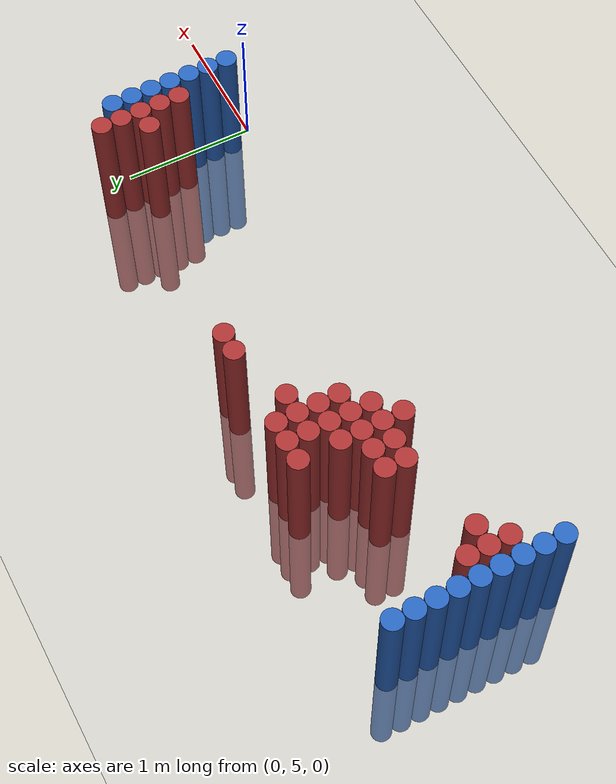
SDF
<sdf version="1.6">
 <world name="default">
  <model name="ground_plane">
   <static>1</static>
   <link name="link">
    <collision name="collision">
     <geometry><plane><normal>0 0 1</normal><size>100 100</size></plane></geometry>
     <surface><friction><ode><mu>100</mu><mu2>50</mu2></ode></friction></surface>
    </collision>
    <visual name="visual">
     <cast_shadows>0</cast_shadows>
     <geometry><plane><normal>0 0 1</normal><size>100 100</size></plane></geometry>
     <material>
      <script><uri>file://media/materials/scripts/gazebo.material</uri><name>Gazebo/Grey</name></script>
     </material>
    </visual>
   </link>
  </model>
  <model name="unit_cylinder_95">
   <static>1</static>
   <pose>-4.425000 5.025000 0.000000 0.000000 0.000000 0.000000</pose>
   <link name="link">
    <inertial>
     <mass>1</mass>
     <inertia><ixx>0.145833</ixx><ixy>0</ixy><ixz>0</ixz><iyy>0.145833</iyy><iyz>0</iyz><izz>0.125</izz></inertia>
    </inertial>
    <collision name="collision">
     <geometry><cylinder><radius>0.075000</radius><length>2</length></cylinder></geometry>
    </collision>
    <visual name="visual">
     <geometry><cylinder><radius>0.075000</radius><length>2</length></cylinder></geometry>
     <material>
      <ambient>0.152000 0.379000 0.720000 1</ambient>
      <diffuse>0.152000 0.379000 0.720000 1</diffuse>
     </material>
     <material>
      <script><name>Gazebo/Grey</name><uri>file://media/materials/scripts/gazebo.material</uri></script>
     </material>
    </visual>
   </link>
  </model>
  <model name="unit_cylinder_96">
   <static>1</static>
   <pose>-4.425000 5.175000 0.000000 0.000000 0.000000 0.000000</pose>
   <link name="link">
    <inertial>
     <mass>1</mass>
     <inertia><ixx>0.145833</ixx><ixy>0</ixy><ixz>0</ixz><iyy>0.145833</iyy><iyz>0</iyz><izz>0.125</izz></inertia>
    </inertial>
    <collision name="collision">
     <geometry><cylinder><radius>0.075000</radius><length>2</length></cylinder></geometry>
    </collision>
    <visual name="visual">
     <geometry><cylinder><radius>0.075000</radius><length>2</length></cylinder></geometry>
     <material>
      <ambient>0.152000 0.379000 0.720000 1</ambient>
      <diffuse>0.152000 0.379000 0.720000 1</diffuse>
     </material>
     <material>
      <script><name>Gazebo/Grey</name><uri>file://media/materials/scripts/gazebo.material</uri></script>
     </material>
    </visual>
   </link>
  </model>
  <model name="unit_cylinder_97">
   <static>1</static>
   <pose>-4.425000 5.325000 0.000000 0.000000 0.000000 0.000000</pose>
   <link name="link">
    <inertial>
     <mass>1</mass>
     <inertia><ixx>0.145833</ixx><ixy>0</ixy><ixz>0</ixz><iyy>0.145833</iyy><iyz>0</iyz><izz>0.125</izz></inertia>
    </inertial>
    <collision name="collision">
     <geometry><cylinder><radius>0.075000</radius><length>2</length></cylinder></geometry>
    </collision>
    <visual name="visual">
     <geometry><cylinder><radius>0.075000</radius><length>2</length></cylinder></geometry>
     <material>
      <ambient>0.152000 0.379000 0.720000 1</ambient>
      <diffuse>0.152000 0.379000 0.720000 1</diffuse>
     </material>
     <material>
      <script><name>Gazebo/Grey</name><uri>file://media/materials/scripts/gazebo.material</uri></script>
     </material>
    </visual>
   </link>
  </model>
  <model name="unit_cylinder_98">
   <static>1</static>
   <pose>-4.425000 5.475000 0.000000 0.000000 0.000000 0.000000</pose>
   <link name="link">
    <inertial>
     <mass>1</mass>
     <inertia><ixx>0.145833</ixx><ixy>0</ixy><ixz>0</ixz><iyy>0.145833</iyy><iyz>0</iyz><izz>0.125</izz></inertia>
    </inertial>
    <collision name="collision">
     <geometry><cylinder><radius>0.075000</radius><length>2</length></cylinder></geometry>
    </collision>
    <visual name="visual">
     <geometry><cylinder><radius>0.075000</radius><length>2</length></cylinder></geometry>
     <material>
      <ambient>0.152000 0.379000 0.720000 1</ambient>
      <diffuse>0.152000 0.379000 0.720000 1</diffuse>
     </material>
     <material>
      <script><name>Gazebo/Grey</name><uri>file://media/materials/scripts/gazebo.material</uri></script>
     </material>
    </visual>
   </link>
  </model>
  <model name="unit_cylinder_99">
   <static>1</static>
   <pose>-4.425000 5.625000 0.000000 0.000000 0.000000 0.000000</pose>
   <link name="link">
    <inertial>
     <mass>1</mass>
     <inertia><ixx>0.145833</ixx><ixy>0</ixy><ixz>0</ixz><iyy>0.145833</iyy><iyz>0</iyz><izz>0.125</izz></inertia>
    </inertial>
    <collision name="collision">
     <geometry><cylinder><radius>0.075000</radius><length>2</length></cylinder></geometry>
    </collision>
    <visual name="visual">
     <geometry><cylinder><radius>0.075000</radius><length>2</length></cylinder></geometry>
     <material>
      <ambient>0.152000 0.379000 0.720000 1</ambient>
      <diffuse>0.152000 0.379000 0.720000 1</diffuse>
     </material>
     <material>
      <script><name>Gazebo/Grey</name><uri>file://media/materials/scripts/gazebo.material</uri></script>
     </material>
    </visual>
   </link>
  </model>
  <model name="unit_cylinder_100">
   <static>1</static>
   <pose>-4.425000 5.775000 0.000000 0.000000 0.000000 0.000000</pose>
   <link name="link">
    <inertial>
     <mass>1</mass>
     <inertia><ixx>0.145833</ixx><ixy>0</ixy><ixz>0</ixz><iyy>0.145833</iyy><iyz>0</iyz><izz>0.125</izz></inertia>
    </inertial>
    <collision name="collision">
     <geometry><cylinder><radius>0.075000</radius><length>2</length></cylinder></geometry>
    </collision>
    <visual name="visual">
     <geometry><cylinder><radius>0.075000</radius><length>2</length></cylinder></geometry>
     <material>
      <ambient>0.152000 0.379000 0.720000 1</ambient>
      <diffuse>0.152000 0.379000 0.720000 1</diffuse>
     </material>
     <material>
      <script><name>Gazebo/Grey</name><uri>file://media/materials/scripts/gazebo.material</uri></script>
     </material>
    </visual>
   </link>
  </model>
  <model name="unit_cylinder_101">
   <static>1</static>
   <pose>-4.425000 5.925000 0.000000 0.000000 0.000000 0.000000</pose>
   <link name="link">
    <inertial>
     <mass>1</mass>
     <inertia><ixx>0.145833</ixx><ixy>0</ixy><ixz>0</ixz><iyy>0.145833</iyy><iyz>0</iyz><izz>0.125</izz></inertia>
    </inertial>
    <collision name="collision">
     <geometry><cylinder><radius>0.075000</radius><length>2</length></cylinder></geometry>
    </collision>
    <visual name="visual">
     <geometry><cylinder><radius>0.075000</radius><length>2</length></cylinder></geometry>
     <material>
      <ambient>0.152000 0.379000 0.720000 1</ambient>
      <diffuse>0.152000 0.379000 0.720000 1</diffuse>
     </material>
     <material>
      <script><name>Gazebo/Grey</name><uri>file://media/materials/scripts/gazebo.material</uri></script>
     </material>
    </visual>
   </link>
  </model>
  <model name="unit_cylinder_102">
   <static>1</static>
   <pose>-4.425000 6.075000 0.000000 0.000000 0.000000 0.000000</pose>
   <link name="link">
    <inertial>
     <mass>1</mass>
     <inertia><ixx>0.145833</ixx><ixy>0</ixy><ixz>0</ixz><iyy>0.145833</iyy><iyz>0</iyz><izz>0.125</izz></inertia>
    </inertial>
    <collision name="collision">
     <geometry><cylinder><radius>0.075000</radius><length>2</length></cylinder></geometry>
    </collision>
    <visual name="visual">
     <geometry><cylinder><radius>0.075000</radius><length>2</length></cylinder></geometry>
     <material>
      <ambient>0.152000 0.379000 0.720000 1</ambient>
      <diffuse>0.152000 0.379000 0.720000 1</diffuse>
     </material>
     <material>
      <script><name>Gazebo/Grey</name><uri>file://media/materials/scripts/gazebo.material</uri></script>
     </material>
    </visual>
   </link>
  </model>
  <model name="unit_cylinder_103">
   <static>1</static>
   <pose>-4.425000 6.225000 0.000000 0.000000 0.000000 0.000000</pose>
   <link name="link">
    <inertial>
     <mass>1</mass>
     <inertia><ixx>0.145833</ixx><ixy>0</ixy><ixz>0</ixz><iyy>0.145833</iyy><iyz>0</iyz><izz>0.125</izz></inertia>
    </inertial>
    <collision name="collision">
     <geometry><cylinder><radius>0.075000</radius><length>2</length></cylinder></geometry>
    </collision>
    <visual name="visual">
     <geometry><cylinder><radius>0.075000</radius><length>2</length></cylinder></geometry>
     <material>
      <ambient>0.152000 0.379000 0.720000 1</ambient>
      <diffuse>0.152000 0.379000 0.720000 1</diffuse>
     </material>
     <material>
      <script><name>Gazebo/Grey</name><uri>file://media/materials/scripts/gazebo.material</uri></script>
     </material>
    </visual>
   </link>
  </model>
  <model name="unit_cylinder_126">
   <static>1</static>
   <pose>-4.275000 5.325000 0.000000 0.000000 0.000000 0.000000</pose>
   <link name="link">
    <inertial>
     <mass>1</mass>
     <inertia><ixx>0.145833</ixx><ixy>0</ixy><ixz>0</ixz><iyy>0.145833</iyy><iyz>0</iyz><izz>0.125</izz></inertia>
    </inertial>
    <collision name="collision">
     <geometry><cylinder><radius>0.075000</radius><length>2</length></cylinder></geometry>
    </collision>
    <visual name="visual">
     <geometry><cylinder><radius>0.075000</radius><length>2</length></cylinder></geometry>
     <material>
      <ambient>0.648000 0.192000 0.192000 1</ambient>
      <diffuse>0.648000 0.192000 0.192000 1</diffuse>
     </material>
     <material>
      <script><name>Gazebo/Grey</name><uri>file://media/materials/scripts/gazebo.material</uri></script>
     </material>
    </visual>
   </link>
  </model>
  <model name="unit_cylinder_127">
   <static>1</static>
   <pose>-4.275000 5.475000 0.000000 0.000000 0.000000 0.000000</pose>
   <link name="link">
    <inertial>
     <mass>1</mass>
     <inertia><ixx>0.145833</ixx><ixy>0</ixy><ixz>0</ixz><iyy>0.145833</iyy><iyz>0</iyz><izz>0.125</izz></inertia>
    </inertial>
    <collision name="collision">
     <geometry><cylinder><radius>0.075000</radius><length>2</length></cylinder></geometry>
    </collision>
    <visual name="visual">
     <geometry><cylinder><radius>0.075000</radius><length>2</length></cylinder></geometry>
     <material>
      <ambient>0.648000 0.192000 0.192000 1</ambient>
      <diffuse>0.648000 0.192000 0.192000 1</diffuse>
     </material>
     <material>
      <script><name>Gazebo/Grey</name><uri>file://media/materials/scripts/gazebo.material</uri></script>
     </material>
    </visual>
   </link>
  </model>
  <model name="unit_cylinder_128">
   <static>1</static>
   <pose>-4.275000 5.625000 0.000000 0.000000 0.000000 0.000000</pose>
   <link name="link">
    <inertial>
     <mass>1</mass>
     <inertia><ixx>0.145833</ixx><ixy>0</ixy><ixz>0</ixz><iyy>0.145833</iyy><iyz>0</iyz><izz>0.125</izz></inertia>
    </inertial>
    <collision name="collision">
     <geometry><cylinder><radius>0.075000</radius><length>2</length></cylinder></geometry>
    </collision>
    <visual name="visual">
     <geometry><cylinder><radius>0.075000</radius><length>2</length></cylinder></geometry>
     <material>
      <ambient>0.648000 0.192000 0.192000 1</ambient>
      <diffuse>0.648000 0.192000 0.192000 1</diffuse>
     </material>
     <material>
      <script><name>Gazebo/Grey</name><uri>file://media/materials/scripts/gazebo.material</uri></script>
     </material>
    </visual>
   </link>
  </model>
  <model name="unit_cylinder_130">
   <static>1</static>
   <pose>-4.125000 5.475000 0.000000 0.000000 0.000000 0.000000</pose>
   <link name="link">
    <inertial>
     <mass>1</mass>
     <inertia><ixx>0.145833</ixx><ixy>0</ixy><ixz>0</ixz><iyy>0.145833</iyy><iyz>0</iyz><izz>0.125</izz></inertia>
    </inertial>
    <collision name="collision">
     <geometry><cylinder><radius>0.075000</radius><length>2</length></cylinder></geometry>
    </collision>
    <visual name="visual">
     <geometry><cylinder><radius>0.075000</radius><length>2</length></cylinder></geometry>
     <material>
      <ambient>0.648000 0.192000 0.192000 1</ambient>
      <diffuse>0.648000 0.192000 0.192000 1</diffuse>
     </material>
     <material>
      <script><name>Gazebo/Grey</name><uri>file://media/materials/scripts/gazebo.material</uri></script>
     </material>
    </visual>
   </link>
  </model>
  <model name="unit_cylinder_139">
   <static>1</static>
   <pose>-3.525000 5.625000 0.000000 0.000000 0.000000 0.000000</pose>
   <link name="link">
    <inertial>
     <mass>1</mass>
     <inertia><ixx>0.145833</ixx><ixy>0</ixy><ixz>0</ixz><iyy>0.145833</iyy><iyz>0</iyz><izz>0.125</izz></inertia>
    </inertial>
    <collision name="collision">
     <geometry><cylinder><radius>0.075000</radius><length>2</length></cylinder></geometry>
    </collision>
    <visual name="visual">
     <geometry><cylinder><radius>0.075000</radius><length>2</length></cylinder></geometry>
     <material>
      <ambient>0.648000 0.192000 0.192000 1</ambient>
      <diffuse>0.648000 0.192000 0.192000 1</diffuse>
     </material>
     <material>
      <script><name>Gazebo/Grey</name><uri>file://media/materials/scripts/gazebo.material</uri></script>
     </material>
    </visual>
   </link>
  </model>
  <model name="unit_cylinder_140">
   <static>1</static>
   <pose>-3.525000 5.775000 0.000000 0.000000 0.000000 0.000000</pose>
   <link name="link">
    <inertial>
     <mass>1</mass>
     <inertia><ixx>0.145833</ixx><ixy>0</ixy><ixz>0</ixz><iyy>0.145833</iyy><iyz>0</iyz><izz>0.125</izz></inertia>
    </inertial>
    <collision name="collision">
     <geometry><cylinder><radius>0.075000</radius><length>2</length></cylinder></geometry>
    </collision>
    <visual name="visual">
     <geometry><cylinder><radius>0.075000</radius><length>2</length></cylinder></geometry>
     <material>
      <ambient>0.648000 0.192000 0.192000 1</ambient>
      <diffuse>0.648000 0.192000 0.192000 1</diffuse>
     </material>
     <material>
      <script><name>Gazebo/Grey</name><uri>file://media/materials/scripts/gazebo.material</uri></script>
     </material>
    </visual>
   </link>
  </model>
  <model name="unit_cylinder_143">
   <static>1</static>
   <pose>-3.375000 5.625000 0.000000 0.000000 0.000000 0.000000</pose>
   <link name="link">
    <inertial>
     <mass>1</mass>
     <inertia><ixx>0.145833</ixx><ixy>0</ixy><ixz>0</ixz><iyy>0.145833</iyy><iyz>0</iyz><izz>0.125</izz></inertia>
    </inertial>
    <collision name="collision">
     <geometry><cylinder><radius>0.075000</radius><length>2</length></cylinder></geometry>
    </collision>
    <visual name="visual">
     <geometry><cylinder><radius>0.075000</radius><length>2</length></cylinder></geometry>
     <material>
      <ambient>0.648000 0.192000 0.192000 1</ambient>
      <diffuse>0.648000 0.192000 0.192000 1</diffuse>
     </material>
     <material>
      <script><name>Gazebo/Grey</name><uri>file://media/materials/scripts/gazebo.material</uri></script>
     </material>
    </visual>
   </link>
  </model>
  <model name="unit_cylinder_144">
   <static>1</static>
   <pose>-3.375000 5.775000 0.000000 0.000000 0.000000 0.000000</pose>
   <link name="link">
    <inertial>
     <mass>1</mass>
     <inertia><ixx>0.145833</ixx><ixy>0</ixy><ixz>0</ixz><iyy>0.145833</iyy><iyz>0</iyz><izz>0.125</izz></inertia>
    </inertial>
    <collision name="collision">
     <geometry><cylinder><radius>0.075000</radius><length>2</length></cylinder></geometry>
    </collision>
    <visual name="visual">
     <geometry><cylinder><radius>0.075000</radius><length>2</length></cylinder></geometry>
     <material>
      <ambient>0.648000 0.192000 0.192000 1</ambient>
      <diffuse>0.648000 0.192000 0.192000 1</diffuse>
     </material>
     <material>
      <script><name>Gazebo/Grey</name><uri>file://media/materials/scripts/gazebo.material</uri></script>
     </material>
    </visual>
   </link>
  </model>
  <model name="unit_cylinder_145">
   <static>1</static>
   <pose>-3.225000 5.475000 0.000000 0.000000 0.000000 0.000000</pose>
   <link name="link">
    <inertial>
     <mass>1</mass>
     <inertia><ixx>0.145833</ixx><ixy>0</ixy><ixz>0</ixz><iyy>0.145833</iyy><iyz>0</iyz><izz>0.125</izz></inertia>
    </inertial>
    <collision name="collision">
     <geometry><cylinder><radius>0.075000</radius><length>2</length></cylinder></geometry>
    </collision>
    <visual name="visual">
     <geometry><cylinder><radius>0.075000</radius><length>2</length></cylinder></geometry>
     <material>
      <ambient>0.648000 0.192000 0.192000 1</ambient>
      <diffuse>0.648000 0.192000 0.192000 1</diffuse>
     </material>
     <material>
      <script><name>Gazebo/Grey</name><uri>file://media/materials/scripts/gazebo.material</uri></script>
     </material>
    </visual>
   </link>
  </model>
  <model name="unit_cylinder_146">
   <static>1</static>
   <pose>-3.225000 5.625000 0.000000 0.000000 0.000000 0.000000</pose>
   <link name="link">
    <inertial>
     <mass>1</mass>
     <inertia><ixx>0.145833</ixx><ixy>0</ixy><ixz>0</ixz><iyy>0.145833</iyy><iyz>0</iyz><izz>0.125</izz></inertia>
    </inertial>
    <collision name="collision">
     <geometry><cylinder><radius>0.075000</radius><length>2</length></cylinder></geometry>
    </collision>
    <visual name="visual">
     <geometry><cylinder><radius>0.075000</radius><length>2</length></cylinder></geometry>
     <material>
      <ambient>0.648000 0.192000 0.192000 1</ambient>
      <diffuse>0.648000 0.192000 0.192000 1</diffuse>
     </material>
     <material>
      <script><name>Gazebo/Grey</name><uri>file://media/materials/scripts/gazebo.material</uri></script>
     </material>
    </visual>
   </link>
  </model>
  <model name="unit_cylinder_147">
   <static>1</static>
   <pose>-3.225000 5.775000 0.000000 0.000000 0.000000 0.000000</pose>
   <link name="link">
    <inertial>
     <mass>1</mass>
     <inertia><ixx>0.145833</ixx><ixy>0</ixy><ixz>0</ixz><iyy>0.145833</iyy><iyz>0</iyz><izz>0.125</izz></inertia>
    </inertial>
    <collision name="collision">
     <geometry><cylinder><radius>0.075000</radius><length>2</length></cylinder></geometry>
    </collision>
    <visual name="visual">
     <geometry><cylinder><radius>0.075000</radius><length>2</length></cylinder></geometry>
     <material>
      <ambient>0.648000 0.192000 0.192000 1</ambient>
      <diffuse>0.648000 0.192000 0.192000 1</diffuse>
     </material>
     <material>
      <script><name>Gazebo/Grey</name><uri>file://media/materials/scripts/gazebo.material</uri></script>
     </material>
    </visual>
   </link>
  </model>
  <model name="unit_cylinder_148">
   <static>1</static>
   <pose>-3.225000 5.925000 0.000000 0.000000 0.000000 0.000000</pose>
   <link name="link">
    <inertial>
     <mass>1</mass>
     <inertia><ixx>0.145833</ixx><ixy>0</ixy><ixz>0</ixz><iyy>0.145833</iyy><iyz>0</iyz><izz>0.125</izz></inertia>
    </inertial>
    <collision name="collision">
     <geometry><cylinder><radius>0.075000</radius><length>2</length></cylinder></geometry>
    </collision>
    <visual name="visual">
     <geometry><cylinder><radius>0.075000</radius><length>2</length></cylinder></geometry>
     <material>
      <ambient>0.648000 0.192000 0.192000 1</ambient>
      <diffuse>0.648000 0.192000 0.192000 1</diffuse>
     </material>
     <material>
      <script><name>Gazebo/Grey</name><uri>file://media/materials/scripts/gazebo.material</uri></script>
     </material>
    </visual>
   </link>
  </model>
  <model name="unit_cylinder_149">
   <static>1</static>
   <pose>-3.225000 6.225000 0.000000 0.000000 0.000000 0.000000</pose>
   <link name="link">
    <inertial>
     <mass>1</mass>
     <inertia><ixx>0.145833</ixx><ixy>0</ixy><ixz>0</ixz><iyy>0.145833</iyy><iyz>0</iyz><izz>0.125</izz></inertia>
    </inertial>
    <collision name="collision">
     <geometry><cylinder><radius>0.075000</radius><length>2</length></cylinder></geometry>
    </collision>
    <visual name="visual">
     <geometry><cylinder><radius>0.075000</radius><length>2</length></cylinder></geometry>
     <material>
      <ambient>0.648000 0.192000 0.192000 1</ambient>
      <diffuse>0.648000 0.192000 0.192000 1</diffuse>
     </material>
     <material>
      <script><name>Gazebo/Grey</name><uri>file://media/materials/scripts/gazebo.material</uri></script>
     </material>
    </visual>
   </link>
  </model>
  <model name="unit_cylinder_150">
   <static>1</static>
   <pose>-3.075000 5.625000 0.000000 0.000000 0.000000 0.000000</pose>
   <link name="link">
    <inertial>
     <mass>1</mass>
     <inertia><ixx>0.145833</ixx><ixy>0</ixy><ixz>0</ixz><iyy>0.145833</iyy><iyz>0</iyz><izz>0.125</izz></inertia>
    </inertial>
    <collision name="collision">
     <geometry><cylinder><radius>0.075000</radius><length>2</length></cylinder></geometry>
    </collision>
    <visual name="visual">
     <geometry><cylinder><radius>0.075000</radius><length>2</length></cylinder></geometry>
     <material>
      <ambient>0.648000 0.192000 0.192000 1</ambient>
      <diffuse>0.648000 0.192000 0.192000 1</diffuse>
     </material>
     <material>
      <script><name>Gazebo/Grey</name><uri>file://media/materials/scripts/gazebo.material</uri></script>
     </material>
    </visual>
   </link>
  </model>
  <model name="unit_cylinder_151">
   <static>1</static>
   <pose>-3.075000 5.775000 0.000000 0.000000 0.000000 0.000000</pose>
   <link name="link">
    <inertial>
     <mass>1</mass>
     <inertia><ixx>0.145833</ixx><ixy>0</ixy><ixz>0</ixz><iyy>0.145833</iyy><iyz>0</iyz><izz>0.125</izz></inertia>
    </inertial>
    <collision name="collision">
     <geometry><cylinder><radius>0.075000</radius><length>2</length></cylinder></geometry>
    </collision>
    <visual name="visual">
     <geometry><cylinder><radius>0.075000</radius><length>2</length></cylinder></geometry>
     <material>
      <ambient>0.648000 0.192000 0.192000 1</ambient>
      <diffuse>0.648000 0.192000 0.192000 1</diffuse>
     </material>
     <material>
      <script><name>Gazebo/Grey</name><uri>file://media/materials/scripts/gazebo.material</uri></script>
     </material>
    </visual>
   </link>
  </model>
  <model name="unit_cylinder_152">
   <static>1</static>
   <pose>-3.075000 5.925000 0.000000 0.000000 0.000000 0.000000</pose>
   <link name="link">
    <inertial>
     <mass>1</mass>
     <inertia><ixx>0.145833</ixx><ixy>0</ixy><ixz>0</ixz><iyy>0.145833</iyy><iyz>0</iyz><izz>0.125</izz></inertia>
    </inertial>
    <collision name="collision">
     <geometry><cylinder><radius>0.075000</radius><length>2</length></cylinder></geometry>
    </collision>
    <visual name="visual">
     <geometry><cylinder><radius>0.075000</radius><length>2</length></cylinder></geometry>
     <material>
      <ambient>0.648000 0.192000 0.192000 1</ambient>
      <diffuse>0.648000 0.192000 0.192000 1</diffuse>
     </material>
     <material>
      <script><name>Gazebo/Grey</name><uri>file://media/materials/scripts/gazebo.material</uri></script>
     </material>
    </visual>
   </link>
  </model>
  <model name="unit_cylinder_153">
   <static>1</static>
   <pose>-3.075000 6.075000 0.000000 0.000000 0.000000 0.000000</pose>
   <link name="link">
    <inertial>
     <mass>1</mass>
     <inertia><ixx>0.145833</ixx><ixy>0</ixy><ixz>0</ixz><iyy>0.145833</iyy><iyz>0</iyz><izz>0.125</izz></inertia>
    </inertial>
    <collision name="collision">
     <geometry><cylinder><radius>0.075000</radius><length>2</length></cylinder></geometry>
    </collision>
    <visual name="visual">
     <geometry><cylinder><radius>0.075000</radius><length>2</length></cylinder></geometry>
     <material>
      <ambient>0.648000 0.192000 0.192000 1</ambient>
      <diffuse>0.648000 0.192000 0.192000 1</diffuse>
     </material>
     <material>
      <script><name>Gazebo/Grey</name><uri>file://media/materials/scripts/gazebo.material</uri></script>
     </material>
    </visual>
   </link>
  </model>
  <model name="unit_cylinder_154">
   <static>1</static>
   <pose>-3.075000 6.225000 0.000000 0.000000 0.000000 0.000000</pose>
   <link name="link">
    <inertial>
     <mass>1</mass>
     <inertia><ixx>0.145833</ixx><ixy>0</ixy><ixz>0</ixz><iyy>0.145833</iyy><iyz>0</iyz><izz>0.125</izz></inertia>
    </inertial>
    <collision name="collision">
     <geometry><cylinder><radius>0.075000</radius><length>2</length></cylinder></geometry>
    </collision>
    <visual name="visual">
     <geometry><cylinder><radius>0.075000</radius><length>2</length></cylinder></geometry>
     <material>
      <ambient>0.648000 0.192000 0.192000 1</ambient>
      <diffuse>0.648000 0.192000 0.192000 1</diffuse>
     </material>
     <material>
      <script><name>Gazebo/Grey</name><uri>file://media/materials/scripts/gazebo.material</uri></script>
     </material>
    </visual>
   </link>
  </model>
  <model name="unit_cylinder_156">
   <static>1</static>
   <pose>-2.925000 5.775000 0.000000 0.000000 0.000000 0.000000</pose>
   <link name="link">
    <inertial>
     <mass>1</mass>
     <inertia><ixx>0.145833</ixx><ixy>0</ixy><ixz>0</ixz><iyy>0.145833</iyy><iyz>0</iyz><izz>0.125</izz></inertia>
    </inertial>
    <collision name="collision">
     <geometry><cylinder><radius>0.075000</radius><length>2</length></cylinder></geometry>
    </collision>
    <visual name="visual">
     <geometry><cylinder><radius>0.075000</radius><length>2</length></cylinder></geometry>
     <material>
      <ambient>0.648000 0.192000 0.192000 1</ambient>
      <diffuse>0.648000 0.192000 0.192000 1</diffuse>
     </material>
     <material>
      <script><name>Gazebo/Grey</name><uri>file://media/materials/scripts/gazebo.material</uri></script>
     </material>
    </visual>
   </link>
  </model>
  <model name="unit_cylinder_157">
   <static>1</static>
   <pose>-2.925000 5.925000 0.000000 0.000000 0.000000 0.000000</pose>
   <link name="link">
    <inertial>
     <mass>1</mass>
     <inertia><ixx>0.145833</ixx><ixy>0</ixy><ixz>0</ixz><iyy>0.145833</iyy><iyz>0</iyz><izz>0.125</izz></inertia>
    </inertial>
    <collision name="collision">
     <geometry><cylinder><radius>0.075000</radius><length>2</length></cylinder></geometry>
    </collision>
    <visual name="visual">
     <geometry><cylinder><radius>0.075000</radius><length>2</length></cylinder></geometry>
     <material>
      <ambient>0.648000 0.192000 0.192000 1</ambient>
      <diffuse>0.648000 0.192000 0.192000 1</diffuse>
     </material>
     <material>
      <script><name>Gazebo/Grey</name><uri>file://media/materials/scripts/gazebo.material</uri></script>
     </material>
    </visual>
   </link>
  </model>
  <model name="unit_cylinder_158">
   <static>1</static>
   <pose>-2.925000 6.075000 0.000000 0.000000 0.000000 0.000000</pose>
   <link name="link">
    <inertial>
     <mass>1</mass>
     <inertia><ixx>0.145833</ixx><ixy>0</ixy><ixz>0</ixz><iyy>0.145833</iyy><iyz>0</iyz><izz>0.125</izz></inertia>
    </inertial>
    <collision name="collision">
     <geometry><cylinder><radius>0.075000</radius><length>2</length></cylinder></geometry>
    </collision>
    <visual name="visual">
     <geometry><cylinder><radius>0.075000</radius><length>2</length></cylinder></geometry>
     <material>
      <ambient>0.648000 0.192000 0.192000 1</ambient>
      <diffuse>0.648000 0.192000 0.192000 1</diffuse>
     </material>
     <material>
      <script><name>Gazebo/Grey</name><uri>file://media/materials/scripts/gazebo.material</uri></script>
     </material>
    </visual>
   </link>
  </model>
  <model name="unit_cylinder_159">
   <static>1</static>
   <pose>-2.925000 6.225000 0.000000 0.000000 0.000000 0.000000</pose>
   <link name="link">
    <inertial>
     <mass>1</mass>
     <inertia><ixx>0.145833</ixx><ixy>0</ixy><ixz>0</ixz><iyy>0.145833</iyy><iyz>0</iyz><izz>0.125</izz></inertia>
    </inertial>
    <collision name="collision">
     <geometry><cylinder><radius>0.075000</radius><length>2</length></cylinder></geometry>
    </collision>
    <visual name="visual">
     <geometry><cylinder><radius>0.075000</radius><length>2</length></cylinder></geometry>
     <material>
      <ambient>0.648000 0.192000 0.192000 1</ambient>
      <diffuse>0.648000 0.192000 0.192000 1</diffuse>
     </material>
     <material>
      <script><name>Gazebo/Grey</name><uri>file://media/materials/scripts/gazebo.material</uri></script>
     </material>
    </visual>
   </link>
  </model>
  <model name="unit_cylinder_160">
   <static>1</static>
   <pose>-2.775000 6.075000 0.000000 0.000000 0.000000 0.000000</pose>
   <link name="link">
    <inertial>
     <mass>1</mass>
     <inertia><ixx>0.145833</ixx><ixy>0</ixy><ixz>0</ixz><iyy>0.145833</iyy><iyz>0</iyz><izz>0.125</izz></inertia>
    </inertial>
    <collision name="collision">
     <geometry><cylinder><radius>0.075000</radius><length>2</length></cylinder></geometry>
    </collision>
    <visual name="visual">
     <geometry><cylinder><radius>0.075000</radius><length>2</length></cylinder></geometry>
     <material>
      <ambient>0.648000 0.192000 0.192000 1</ambient>
      <diffuse>0.648000 0.192000 0.192000 1</diffuse>
     </material>
     <material>
      <script><name>Gazebo/Grey</name><uri>file://media/materials/scripts/gazebo.material</uri></script>
     </material>
    </visual>
   </link>
  </model>
  <model name="unit_cylinder_167">
   <static>1</static>
   <pose>-2.325000 6.225000 0.000000 0.000000 0.000000 0.000000</pose>
   <link name="link">
    <inertial>
     <mass>1</mass>
     <inertia><ixx>0.145833</ixx><ixy>0</ixy><ixz>0</ixz><iyy>0.145833</iyy><iyz>0</iyz><izz>0.125</izz></inertia>
    </inertial>
    <collision name="collision">
     <geometry><cylinder><radius>0.075000</radius><length>2</length></cylinder></geometry>
    </collision>
    <visual name="visual">
     <geometry><cylinder><radius>0.075000</radius><length>2</length></cylinder></geometry>
     <material>
      <ambient>0.648000 0.192000 0.192000 1</ambient>
      <diffuse>0.648000 0.192000 0.192000 1</diffuse>
     </material>
     <material>
      <script><name>Gazebo/Grey</name><uri>file://media/materials/scripts/gazebo.material</uri></script>
     </material>
    </visual>
   </link>
  </model>
  <model name="unit_cylinder_170">
   <static>1</static>
   <pose>-2.175000 6.225000 0.000000 0.000000 0.000000 0.000000</pose>
   <link name="link">
    <inertial>
     <mass>1</mass>
     <inertia><ixx>0.145833</ixx><ixy>0</ixy><ixz>0</ixz><iyy>0.145833</iyy><iyz>0</iyz><izz>0.125</izz></inertia>
    </inertial>
    <collision name="collision">
     <geometry><cylinder><radius>0.075000</radius><length>2</length></cylinder></geometry>
    </collision>
    <visual name="visual">
     <geometry><cylinder><radius>0.075000</radius><length>2</length></cylinder></geometry>
     <material>
      <ambient>0.648000 0.192000 0.192000 1</ambient>
      <diffuse>0.648000 0.192000 0.192000 1</diffuse>
     </material>
     <material>
      <script><name>Gazebo/Grey</name><uri>file://media/materials/scripts/gazebo.material</uri></script>
     </material>
    </visual>
   </link>
  </model>
  <model name="unit_cylinder_185">
   <static>1</static>
   <pose>-0.375000 5.925000 0.000000 0.000000 0.000000 0.000000</pose>
   <link name="link">
    <inertial>
     <mass>1</mass>
     <inertia><ixx>0.145833</ixx><ixy>0</ixy><ixz>0</ixz><iyy>0.145833</iyy><iyz>0</iyz><izz>0.125</izz></inertia>
    </inertial>
    <collision name="collision">
     <geometry><cylinder><radius>0.075000</radius><length>2</length></cylinder></geometry>
    </collision>
    <visual name="visual">
     <geometry><cylinder><radius>0.075000</radius><length>2</length></cylinder></geometry>
     <material>
      <ambient>0.648000 0.192000 0.192000 1</ambient>
      <diffuse>0.648000 0.192000 0.192000 1</diffuse>
     </material>
     <material>
      <script><name>Gazebo/Grey</name><uri>file://media/materials/scripts/gazebo.material</uri></script>
     </material>
    </visual>
   </link>
  </model>
  <model name="unit_cylinder_190">
   <static>1</static>
   <pose>-0.225000 5.625000 0.000000 0.000000 0.000000 0.000000</pose>
   <link name="link">
    <inertial>
     <mass>1</mass>
     <inertia><ixx>0.145833</ixx><ixy>0</ixy><ixz>0</ixz><iyy>0.145833</iyy><iyz>0</iyz><izz>0.125</izz></inertia>
    </inertial>
    <collision name="collision">
     <geometry><cylinder><radius>0.075000</radius><length>2</length></cylinder></geometry>
    </collision>
    <visual name="visual">
     <geometry><cylinder><radius>0.075000</radius><length>2</length></cylinder></geometry>
     <material>
      <ambient>0.648000 0.192000 0.192000 1</ambient>
      <diffuse>0.648000 0.192000 0.192000 1</diffuse>
     </material>
     <material>
      <script><name>Gazebo/Grey</name><uri>file://media/materials/scripts/gazebo.material</uri></script>
     </material>
    </visual>
   </link>
  </model>
  <model name="unit_cylinder_191">
   <static>1</static>
   <pose>-0.225000 5.775000 0.000000 0.000000 0.000000 0.000000</pose>
   <link name="link">
    <inertial>
     <mass>1</mass>
     <inertia><ixx>0.145833</ixx><ixy>0</ixy><ixz>0</ixz><iyy>0.145833</iyy><iyz>0</iyz><izz>0.125</izz></inertia>
    </inertial>
    <collision name="collision">
     <geometry><cylinder><radius>0.075000</radius><length>2</length></cylinder></geometry>
    </collision>
    <visual name="visual">
     <geometry><cylinder><radius>0.075000</radius><length>2</length></cylinder></geometry>
     <material>
      <ambient>0.648000 0.192000 0.192000 1</ambient>
      <diffuse>0.648000 0.192000 0.192000 1</diffuse>
     </material>
     <material>
      <script><name>Gazebo/Grey</name><uri>file://media/materials/scripts/gazebo.material</uri></script>
     </material>
    </visual>
   </link>
  </model>
  <model name="unit_cylinder_192">
   <static>1</static>
   <pose>-0.225000 5.925000 0.000000 0.000000 0.000000 0.000000</pose>
   <link name="link">
    <inertial>
     <mass>1</mass>
     <inertia><ixx>0.145833</ixx><ixy>0</ixy><ixz>0</ixz><iyy>0.145833</iyy><iyz>0</iyz><izz>0.125</izz></inertia>
    </inertial>
    <collision name="collision">
     <geometry><cylinder><radius>0.075000</radius><length>2</length></cylinder></geometry>
    </collision>
    <visual name="visual">
     <geometry><cylinder><radius>0.075000</radius><length>2</length></cylinder></geometry>
     <material>
      <ambient>0.648000 0.192000 0.192000 1</ambient>
      <diffuse>0.648000 0.192000 0.192000 1</diffuse>
     </material>
     <material>
      <script><name>Gazebo/Grey</name><uri>file://media/materials/scripts/gazebo.material</uri></script>
     </material>
    </visual>
   </link>
  </model>
  <model name="unit_cylinder_193">
   <static>1</static>
   <pose>-0.225000 6.075000 0.000000 0.000000 0.000000 0.000000</pose>
   <link name="link">
    <inertial>
     <mass>1</mass>
     <inertia><ixx>0.145833</ixx><ixy>0</ixy><ixz>0</ixz><iyy>0.145833</iyy><iyz>0</iyz><izz>0.125</izz></inertia>
    </inertial>
    <collision name="collision">
     <geometry><cylinder><radius>0.075000</radius><length>2</length></cylinder></geometry>
    </collision>
    <visual name="visual">
     <geometry><cylinder><radius>0.075000</radius><length>2</length></cylinder></geometry>
     <material>
      <ambient>0.648000 0.192000 0.192000 1</ambient>
      <diffuse>0.648000 0.192000 0.192000 1</diffuse>
     </material>
     <material>
      <script><name>Gazebo/Grey</name><uri>file://media/materials/scripts/gazebo.material</uri></script>
     </material>
    </visual>
   </link>
  </model>
  <model name="unit_cylinder_194">
   <static>1</static>
   <pose>-0.225000 6.225000 0.000000 0.000000 0.000000 0.000000</pose>
   <link name="link">
    <inertial>
     <mass>1</mass>
     <inertia><ixx>0.145833</ixx><ixy>0</ixy><ixz>0</ixz><iyy>0.145833</iyy><iyz>0</iyz><izz>0.125</izz></inertia>
    </inertial>
    <collision name="collision">
     <geometry><cylinder><radius>0.075000</radius><length>2</length></cylinder></geometry>
    </collision>
    <visual name="visual">
     <geometry><cylinder><radius>0.075000</radius><length>2</length></cylinder></geometry>
     <material>
      <ambient>0.648000 0.192000 0.192000 1</ambient>
      <diffuse>0.648000 0.192000 0.192000 1</diffuse>
     </material>
     <material>
      <script><name>Gazebo/Grey</name><uri>file://media/materials/scripts/gazebo.material</uri></script>
     </material>
    </visual>
   </link>
  </model>
  <model name="unit_cylinder_207">
   <static>1</static>
   <pose>-0.075000 5.175000 0.000000 0.000000 0.000000 0.000000</pose>
   <link name="link">
    <inertial>
     <mass>1</mass>
     <inertia><ixx>0.145833</ixx><ixy>0</ixy><ixz>0</ixz><iyy>0.145833</iyy><iyz>0</iyz><izz>0.125</izz></inertia>
    </inertial>
    <collision name="collision">
     <geometry><cylinder><radius>0.075000</radius><length>2</length></cylinder></geometry>
    </collision>
    <visual name="visual">
     <geometry><cylinder><radius>0.075000</radius><length>2</length></cylinder></geometry>
     <material>
      <ambient>0.152000 0.379000 0.720000 1</ambient>
      <diffuse>0.152000 0.379000 0.720000 1</diffuse>
     </material>
     <material>
      <script><name>Gazebo/Grey</name><uri>file://media/materials/scripts/gazebo.material</uri></script>
     </material>
    </visual>
   </link>
  </model>
  <model name="unit_cylinder_208">
   <static>1</static>
   <pose>-0.075000 5.325000 0.000000 0.000000 0.000000 0.000000</pose>
   <link name="link">
    <inertial>
     <mass>1</mass>
     <inertia><ixx>0.145833</ixx><ixy>0</ixy><ixz>0</ixz><iyy>0.145833</iyy><iyz>0</iyz><izz>0.125</izz></inertia>
    </inertial>
    <collision name="collision">
     <geometry><cylinder><radius>0.075000</radius><length>2</length></cylinder></geometry>
    </collision>
    <visual name="visual">
     <geometry><cylinder><radius>0.075000</radius><length>2</length></cylinder></geometry>
     <material>
      <ambient>0.152000 0.379000 0.720000 1</ambient>
      <diffuse>0.152000 0.379000 0.720000 1</diffuse>
     </material>
     <material>
      <script><name>Gazebo/Grey</name><uri>file://media/materials/scripts/gazebo.material</uri></script>
     </material>
    </visual>
   </link>
  </model>
  <model name="unit_cylinder_209">
   <static>1</static>
   <pose>-0.075000 5.475000 0.000000 0.000000 0.000000 0.000000</pose>
   <link name="link">
    <inertial>
     <mass>1</mass>
     <inertia><ixx>0.145833</ixx><ixy>0</ixy><ixz>0</ixz><iyy>0.145833</iyy><iyz>0</iyz><izz>0.125</izz></inertia>
    </inertial>
    <collision name="collision">
     <geometry><cylinder><radius>0.075000</radius><length>2</length></cylinder></geometry>
    </collision>
    <visual name="visual">
     <geometry><cylinder><radius>0.075000</radius><length>2</length></cylinder></geometry>
     <material>
      <ambient>0.152000 0.379000 0.720000 1</ambient>
      <diffuse>0.152000 0.379000 0.720000 1</diffuse>
     </material>
     <material>
      <script><name>Gazebo/Grey</name><uri>file://media/materials/scripts/gazebo.material</uri></script>
     </material>
    </visual>
   </link>
  </model>
  <model name="unit_cylinder_210">
   <static>1</static>
   <pose>-0.075000 5.625000 0.000000 0.000000 0.000000 0.000000</pose>
   <link name="link">
    <inertial>
     <mass>1</mass>
     <inertia><ixx>0.145833</ixx><ixy>0</ixy><ixz>0</ixz><iyy>0.145833</iyy><iyz>0</iyz><izz>0.125</izz></inertia>
    </inertial>
    <collision name="collision">
     <geometry><cylinder><radius>0.075000</radius><length>2</length></cylinder></geometry>
    </collision>
    <visual name="visual">
     <geometry><cylinder><radius>0.075000</radius><length>2</length></cylinder></geometry>
     <material>
      <ambient>0.152000 0.379000 0.720000 1</ambient>
      <diffuse>0.152000 0.379000 0.720000 1</diffuse>
     </material>
     <material>
      <script><name>Gazebo/Grey</name><uri>file://media/materials/scripts/gazebo.material</uri></script>
     </material>
    </visual>
   </link>
  </model>
  <model name="unit_cylinder_211">
   <static>1</static>
   <pose>-0.075000 5.775000 0.000000 0.000000 0.000000 0.000000</pose>
   <link name="link">
    <inertial>
     <mass>1</mass>
     <inertia><ixx>0.145833</ixx><ixy>0</ixy><ixz>0</ixz><iyy>0.145833</iyy><iyz>0</iyz><izz>0.125</izz></inertia>
    </inertial>
    <collision name="collision">
     <geometry><cylinder><radius>0.075000</radius><length>2</length></cylinder></geometry>
    </collision>
    <visual name="visual">
     <geometry><cylinder><radius>0.075000</radius><length>2</length></cylinder></geometry>
     <material>
      <ambient>0.152000 0.379000 0.720000 1</ambient>
      <diffuse>0.152000 0.379000 0.720000 1</diffuse>
     </material>
     <material>
      <script><name>Gazebo/Grey</name><uri>file://media/materials/scripts/gazebo.material</uri></script>
     </material>
    </visual>
   </link>
  </model>
  <model name="unit_cylinder_212">
   <static>1</static>
   <pose>-0.075000 5.925000 0.000000 0.000000 0.000000 0.000000</pose>
   <link name="link">
    <inertial>
     <mass>1</mass>
     <inertia><ixx>0.145833</ixx><ixy>0</ixy><ixz>0</ixz><iyy>0.145833</iyy><iyz>0</iyz><izz>0.125</izz></inertia>
    </inertial>
    <collision name="collision">
     <geometry><cylinder><radius>0.075000</radius><length>2</length></cylinder></geometry>
    </collision>
    <visual name="visual">
     <geometry><cylinder><radius>0.075000</radius><length>2</length></cylinder></geometry>
     <material>
      <ambient>0.152000 0.379000 0.720000 1</ambient>
      <diffuse>0.152000 0.379000 0.720000 1</diffuse>
     </material>
     <material>
      <script><name>Gazebo/Grey</name><uri>file://media/materials/scripts/gazebo.material</uri></script>
     </material>
    </visual>
   </link>
  </model>
  <model name="unit_cylinder_213">
   <static>1</static>
   <pose>-0.075000 6.075000 0.000000 0.000000 0.000000 0.000000</pose>
   <link name="link">
    <inertial>
     <mass>1</mass>
     <inertia><ixx>0.145833</ixx><ixy>0</ixy><ixz>0</ixz><iyy>0.145833</iyy><iyz>0</iyz><izz>0.125</izz></inertia>
    </inertial>
    <collision name="collision">
     <geometry><cylinder><radius>0.075000</radius><length>2</length></cylinder></geometry>
    </collision>
    <visual name="visual">
     <geometry><cylinder><radius>0.075000</radius><length>2</length></cylinder></geometry>
     <material>
      <ambient>0.152000 0.379000 0.720000 1</ambient>
      <diffuse>0.152000 0.379000 0.720000 1</diffuse>
     </material>
     <material>
      <script><name>Gazebo/Grey</name><uri>file://media/materials/scripts/gazebo.material</uri></script>
     </material>
    </visual>
   </link>
  </model>
 </world>
</sdf>
